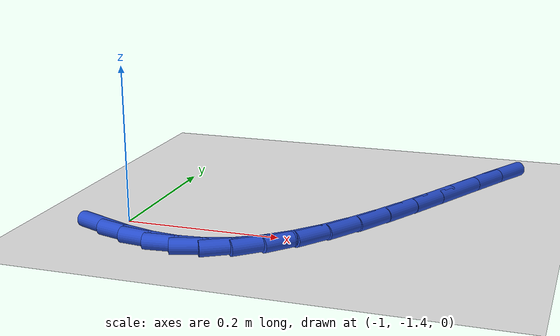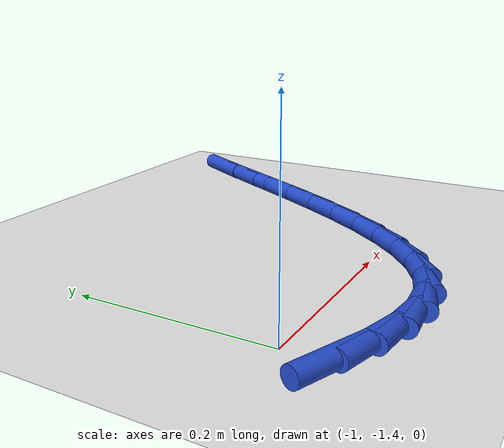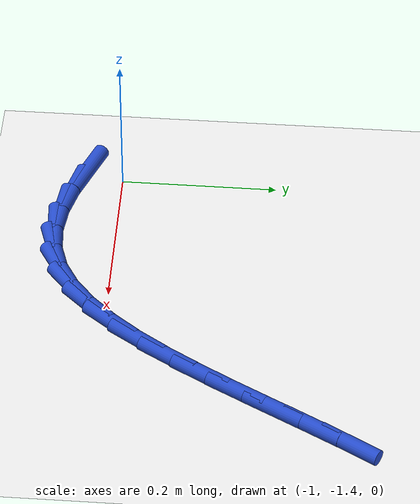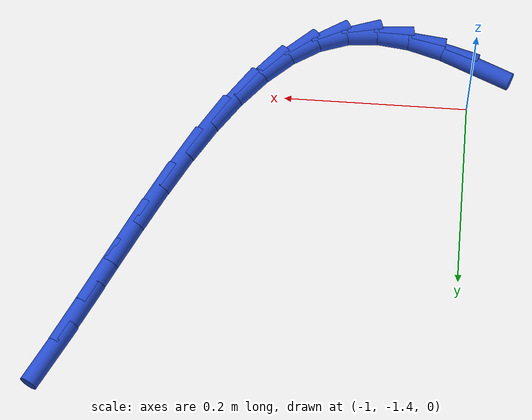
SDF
<sdf version="1.6">
 <world name="default">
  <model name="ground_plane">
   <static>1</static>
   <link name="link">
    <collision name="collision">
     <geometry><plane><normal>0 0 1</normal><size>100 100</size></plane></geometry>
     <surface><friction><ode><mu>100</mu><mu2>50</mu2></ode></friction></surface>
    </collision>
    <visual name="visual">
     <cast_shadows>0</cast_shadows>
     <geometry><plane><normal>0 0 1</normal><size>100 100</size></plane></geometry>
     <material>
      <script><uri>file://media/materials/scripts/gazebo.material</uri><name>Gazebo/WhiteGlow</name></script>
     </material>
    </visual>
   </link>
  </model>
  <model name="line">
   <link name="link_138">
    <pose>-1.0087490940016168 -1.4469370834567266 0.01 0 1.57 -0.3881937330024682</pose>
    <collision name="collision">
     <geometry><cylinder><radius>0.01</radius><length>0.08</length></cylinder></geometry>
    </collision>
    <visual name="visual">
     <material>
      <script><name>Gazebo/Blue</name><uri>file://media/materials/scripts/gazebo.material</uri></script>
     </material>
     <geometry><cylinder><radius>0.01</radius><length>0.08</length></cylinder></geometry>
    </visual>
   </link>
   <link name="link_139">
    <pose>-0.9704599554915554 -1.4625952357576257 0.01 0 1.57 -0.27267575347785555</pose>
    <collision name="collision">
     <geometry><cylinder><radius>0.01</radius><length>0.08</length></cylinder></geometry>
    </collision>
    <visual name="visual">
     <material>
      <script><name>Gazebo/Blue</name><uri>file://media/materials/scripts/gazebo.material</uri></script>
     </material>
     <geometry><cylinder><radius>0.01</radius><length>0.08</length></cylinder></geometry>
    </visual>
   </link>
   <link name="link_140">
    <pose>-0.9335667850304286 -1.472912078122761 0.01 0 1.57 -0.11786506294493157</pose>
    <collision name="collision">
     <geometry><cylinder><radius>0.01</radius><length>0.08</length></cylinder></geometry>
    </collision>
    <visual name="visual">
     <material>
      <script><name>Gazebo/Blue</name><uri>file://media/materials/scripts/gazebo.material</uri></script>
     </material>
     <geometry><cylinder><radius>0.01</radius><length>0.08</length></cylinder></geometry>
    </visual>
   </link>
   <link name="link_141">
    <pose>-0.8982012656248042 -1.4770998476840562 0.01 0 1.57 0.08079009604317204</pose>
    <collision name="collision">
     <geometry><cylinder><radius>0.01</radius><length>0.08</length></cylinder></geometry>
    </collision>
    <visual name="visual">
     <material>
      <script><name>Gazebo/Blue</name><uri>file://media/materials/scripts/gazebo.material</uri></script>
     </material>
     <geometry><cylinder><radius>0.01</radius><length>0.08</length></cylinder></geometry>
    </visual>
   </link>
   <link name="link_142">
    <pose>-0.8644950802812484 -1.4743707815734335 0.01 0 1.57 0.31463863395153097</pose>
    <collision name="collision">
     <geometry><cylinder><radius>0.01</radius><length>0.08</length></cylinder></geometry>
    </collision>
    <visual name="visual">
     <material>
      <script><name>Gazebo/Blue</name><uri>file://media/materials/scripts/gazebo.material</uri></script>
     </material>
     <geometry><cylinder><radius>0.01</radius><length>0.08</length></cylinder></geometry>
    </visual>
   </link>
   <link name="link_143">
    <pose>-0.8325703772761002 -1.4639808947791333 0.01 0 1.57 0.5363834170953238</pose>
    <collision name="collision">
     <geometry><cylinder><radius>0.01</radius><length>0.08</length></cylinder></geometry>
    </collision>
    <visual name="visual">
     <material>
      <script><name>Gazebo/Blue</name><uri>file://media/materials/scripts/gazebo.material</uri></script>
     </material>
     <geometry><cylinder><radius>0.01</radius><length>0.08</length></cylinder></geometry>
    </visual>
   </link>
   <link name="link_144">
    <pose>-0.802366803590296 -1.4460241405734229 0.01 0 1.57 0.7100326542762377</pose>
    <collision name="collision">
     <geometry><cylinder><radius>0.01</radius><length>0.08</length></cylinder></geometry>
    </collision>
    <visual name="visual">
     <material>
      <script><name>Gazebo/Blue</name><uri>file://media/materials/scripts/gazebo.material</uri></script>
     </material>
     <geometry><cylinder><radius>0.01</radius><length>0.08</length></cylinder></geometry>
    </visual>
   </link>
   <link name="link_145">
    <pose>-0.7736598719414561 -1.4213480799366822 0.01 0 1.57 0.8384925339808544</pose>
    <collision name="collision">
     <geometry><cylinder><radius>0.01</radius><length>0.08</length></cylinder></geometry>
    </collision>
    <visual name="visual">
     <material>
      <script><name>Gazebo/Blue</name><uri>file://media/materials/scripts/gazebo.material</uri></script>
     </material>
     <geometry><cylinder><radius>0.01</radius><length>0.08</length></cylinder></geometry>
    </visual>
   </link>
   <link name="link_146">
    <pose>-0.7462192466846272 -1.3908271260800624 0.01 0 1.57 0.9311639242702411</pose>
    <collision name="collision">
     <geometry><cylinder><radius>0.01</radius><length>0.08</length></cylinder></geometry>
    </collision>
    <visual name="visual">
     <material>
      <script><name>Gazebo/Blue</name><uri>file://media/materials/scripts/gazebo.material</uri></script>
     </material>
     <geometry><cylinder><radius>0.01</radius><length>0.08</length></cylinder></geometry>
    </visual>
   </link>
   <link name="link_147">
    <pose>-0.7198145921748553 -1.3553356922147144 0.01 0 1.57 0.996783958552908</pose>
    <collision name="collision">
     <geometry><cylinder><radius>0.01</radius><length>0.08</length></cylinder></geometry>
    </collision>
    <visual name="visual">
     <material>
      <script><name>Gazebo/Blue</name><uri>file://media/materials/scripts/gazebo.material</uri></script>
     </material>
     <geometry><cylinder><radius>0.01</radius><length>0.08</length></cylinder></geometry>
    </visual>
   </link>
   <link name="link_148">
    <pose>-0.6942155727671859 -1.3157481915517886 0.01 0 1.57 1.0418210492041822</pose>
    <collision name="collision">
     <geometry><cylinder><radius>0.01</radius><length>0.08</length></cylinder></geometry>
    </collision>
    <visual name="visual">
     <material>
      <script><name>Gazebo/Blue</name><uri>file://media/materials/scripts/gazebo.material</uri></script>
     </material>
     <geometry><cylinder><radius>0.01</radius><length>0.08</length></cylinder></geometry>
    </visual>
   </link>
   <link name="link_149">
    <pose>-0.6691918528166663 -1.272939037302437 0.01 0 1.57 1.0706308155870283</pose>
    <collision name="collision">
     <geometry><cylinder><radius>0.01</radius><length>0.08</length></cylinder></geometry>
    </collision>
    <visual name="visual">
     <material>
      <script><name>Gazebo/Blue</name><uri>file://media/materials/scripts/gazebo.material</uri></script>
     </material>
     <geometry><cylinder><radius>0.01</radius><length>0.08</length></cylinder></geometry>
    </visual>
   </link>
   <link name="link_150">
    <pose>-0.6445130966783418 -1.2277826426778093 0.01 0 1.57 1.085941749769579</pose>
    <collision name="collision">
     <geometry><cylinder><radius>0.01</radius><length>0.08</length></cylinder></geometry>
    </collision>
    <visual name="visual">
     <material>
      <script><name>Gazebo/Blue</name><uri>file://media/materials/scripts/gazebo.material</uri></script>
     </material>
     <geometry><cylinder><radius>0.01</radius><length>0.08</length></cylinder></geometry>
    </visual>
   </link>
   <link name="link_151">
    <pose>-0.6199489687072586 -1.181153420889058 0.01 0 1.57 1.0892546842953363</pose>
    <collision name="collision">
     <geometry><cylinder><radius>0.01</radius><length>0.08</length></cylinder></geometry>
    </collision>
    <visual name="visual">
     <material>
      <script><name>Gazebo/Blue</name><uri>file://media/materials/scripts/gazebo.material</uri></script>
     </material>
     <geometry><cylinder><radius>0.01</radius><length>0.08</length></cylinder></geometry>
    </visual>
   </link>
   <link name="link_152">
    <pose>-0.5952691332584628 -1.1339257851473326 0.01 0 1.57 1.0810876659621418</pose>
    <collision name="collision">
     <geometry><cylinder><radius>0.01</radius><length>0.08</length></cylinder></geometry>
    </collision>
    <visual name="visual">
     <material>
      <script><name>Gazebo/Blue</name><uri>file://media/materials/scripts/gazebo.material</uri></script>
     </material>
     <geometry><cylinder><radius>0.01</radius><length>0.08</length></cylinder></geometry>
    </visual>
   </link>
   <link name="link_153">
    <pose>-0.5702432546870007 -1.0869741486637847 0.01 0 1.57 1.0610800246129832</pose>
    <collision name="collision">
     <geometry><cylinder><radius>0.01</radius><length>0.08</length></cylinder></geometry>
    </collision>
    <visual name="visual">
     <material>
      <script><name>Gazebo/Blue</name><uri>file://media/materials/scripts/gazebo.material</uri></script>
     </material>
     <geometry><cylinder><radius>0.01</radius><length>0.08</length></cylinder></geometry>
    </visual>
   </link>
  </model>
 </world>
</sdf>
